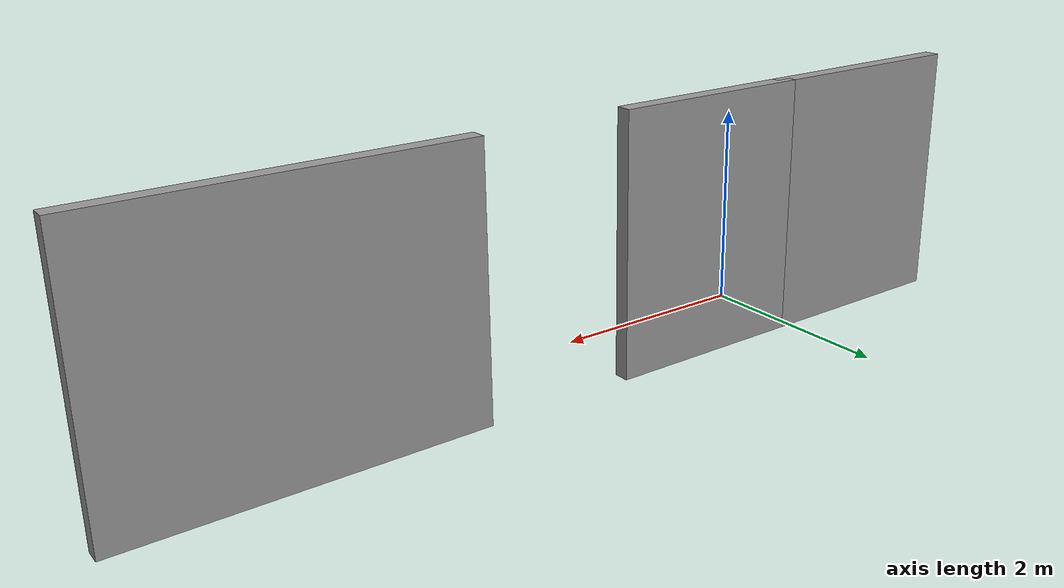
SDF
<?xml version='1.0'?>
<sdf version='1.7'>
  <model name='mundo'>
    <pose>2.39646 0.489912 0 0 -0 0</pose>
    <link name='Wall_2'>
      <collision name='Wall_2_Collision'>
        <geometry>
          <box>
            <size>2.25 0.15 2.5</size>
          </box>
        </geometry>
        <pose>0 0 1.25 0 -0 0</pose>
      </collision>
      <visual name='Wall_2_Visual'>
        <pose>0 0 1.25 0 -0 0</pose>
        <geometry>
          <box>
            <size>2.25 0.15 2.5</size>
          </box>
        </geometry>
        <material>
          <script>
            <uri>file://media/materials/scripts/gazebo.material</uri>
            <name>Gazebo/Grey</name>
          </script>
          <ambient>1 1 1 1</ambient>
        </material>
        <meta>
          <layer>0</layer>
        </meta>
      </visual>
      <pose>-3.26821 0.414912 0 0 -0 3.14159</pose>
    </link>
    <link name='Wall_4'>
      <collision name='Wall_4_Collision'>
        <geometry>
          <box>
            <size>2 0.15 2.5</size>
          </box>
        </geometry>
        <pose>0 0 1.25 0 -0 0</pose>
      </collision>
      <visual name='Wall_4_Visual'>
        <pose>0 0 1.25 0 -0 0</pose>
        <geometry>
          <box>
            <size>2 0.15 2.5</size>
          </box>
        </geometry>
        <material>
          <script>
            <uri>file://media/materials/scripts/gazebo.material</uri>
            <name>Gazebo/Grey</name>
          </script>
          <ambient>1 1 1 1</ambient>
        </material>
        <meta>
          <layer>0</layer>
        </meta>
      </visual>
      <pose>-1.29321 0.414912 0 0 -0 0</pose>
    </link>
    <link name='Wall_6'>
      <collision name='Wall_6_Collision'>
        <geometry>
          <box>
            <size>3.25 0.15 2.5</size>
          </box>
        </geometry>
        <pose>0 0 1.25 0 -0 0</pose>
      </collision>
      <visual name='Wall_6_Visual'>
        <pose>0 0 1.25 0 -0 0</pose>
        <geometry>
          <box>
            <size>3.25 0.15 2.5</size>
          </box>
        </geometry>
        <material>
          <script>
            <uri>file://media/materials/scripts/gazebo.material</uri>
            <name>Gazebo/Grey</name>
          </script>
          <ambient>1 1 1 1</ambient>
        </material>
        <meta>
          <layer>0</layer>
        </meta>
      </visual>
      <pose>2.76821 0.412608 0 0 -0 0</pose>
    </link>
    <static>1</static>
  </model>
</sdf>
